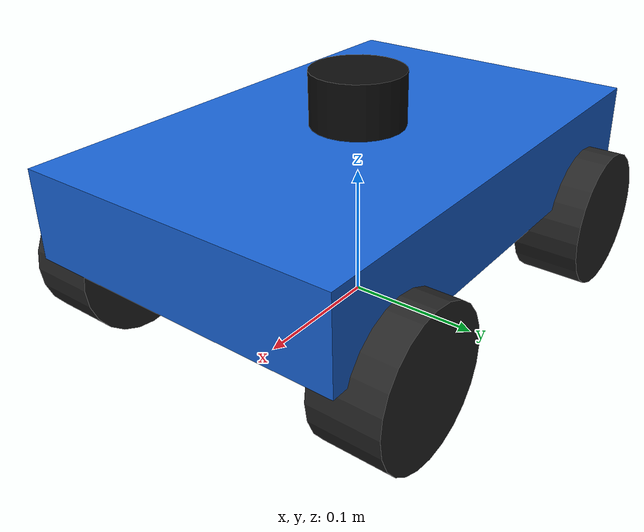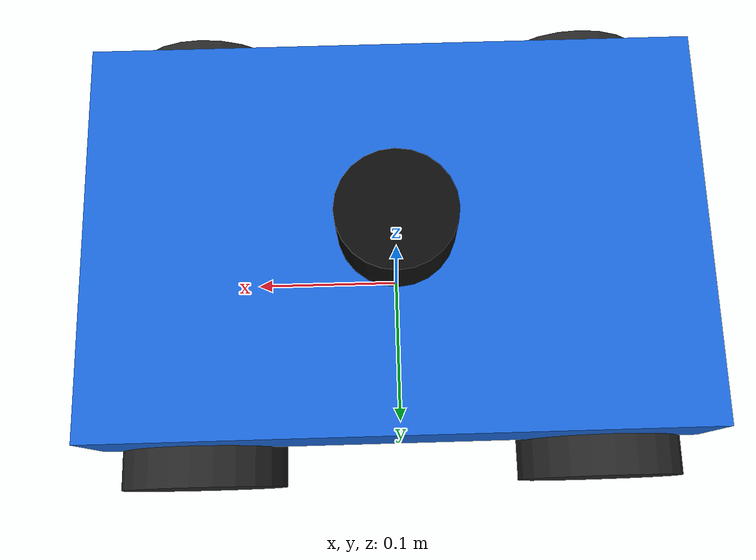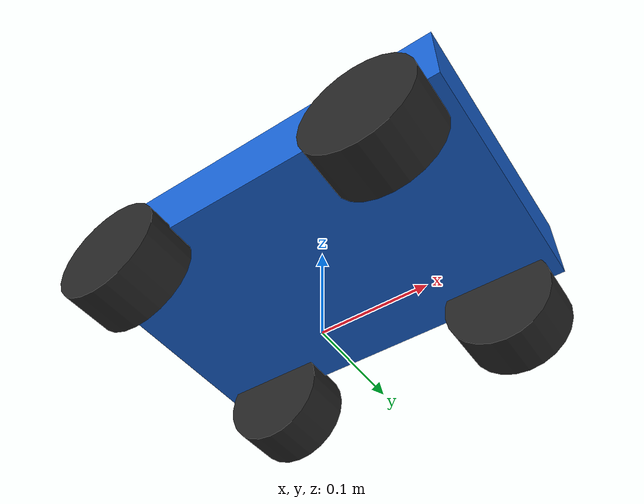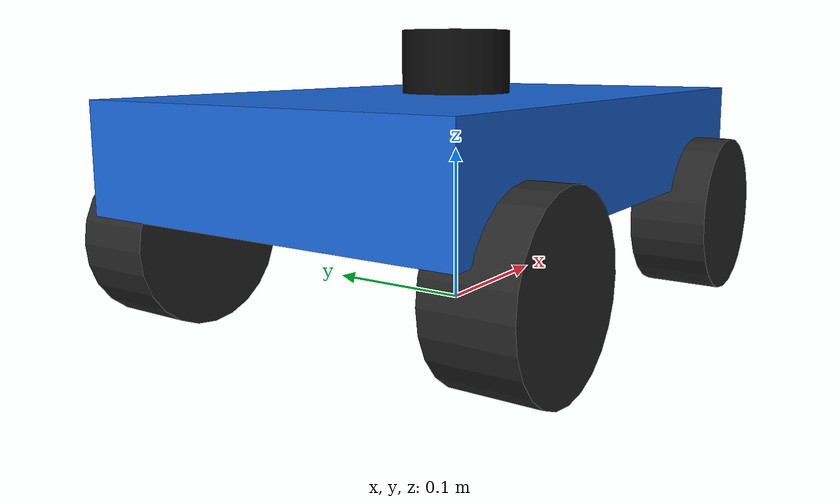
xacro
<?xml version="1.0"?>
<robot xmlns:xacro="http://www.ros.org/wiki/xacro" name="hotel_ackermann">

  <xacro:include filename="properties.xacro"/>
  <xacro:include filename="robot_core.xacro"/>
  <xacro:include filename="lidar.xacro"/>
  <xacro:include filename="imu.xacro"/>
  <xacro:include filename="ros2_control.xacro"/>

</robot>

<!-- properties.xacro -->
<robot xmlns:xacro="http://www.ros.org/wiki/xacro">

  <!-- ============================================================
       DIMENSIONES FÍSICAS (todas en metros y kg)
       ============================================================ -->

  <!-- Chasis (body, sin ruedas ni bumpers) -->
  <xacro:property name="chassis_length" value="0.370"/>   <!-- ~410 mm sin bumpers -->
  <xacro:property name="chassis_width"  value="0.240"/>   <!-- ~288 mm sin sobresaltos -->
  <xacro:property name="chassis_height" value="0.065"/>   <!-- altura del cuerpo -->
  <xacro:property name="chassis_mass"   value="4.0"/>     <!-- 5 kg total - 4 ruedas -->

  <!-- Geometría Ackermann -->
  <xacro:property name="wheelbase"       value="0.251"/>  <!-- distancia entre ejes -->
  <xacro:property name="wheel_track"     value="0.238"/>  <!-- ancho de vía -->
  <xacro:property name="front_axle_x"   value="${wheelbase / 2.0}"/>
  <xacro:property name="rear_axle_x"    value="${-wheelbase / 2.0}"/>
  <xacro:property name="wheel_y_offset" value="${wheel_track / 2.0}"/>

  <!-- Ruedas -->
  <xacro:property name="wheel_radius"   value="0.052"/>   <!-- radio -->
  <xacro:property name="wheel_width"    value="0.050"/>   <!-- ancho del cilindro -->
  <xacro:property name="wheel_mass"     value="0.25"/>    <!-- masa por rueda -->

  <!-- Altura del centro de chasis sobre el suelo (aprox CoG) -->
  <xacro:property name="chassis_z_offset" value="${wheel_radius + 0.020 + chassis_height / 2.0}"/>
  <!-- = 0.052 + 0.020 (holgura suspensión) + 0.0325 = ~0.105 m -->

  <!-- Límites de dirección (40° = 0.6981 rad) -->
  <xacro:property name="max_steer_angle"     value="0.6981"/>
  <xacro:property name="steer_effort"        value="10.0"/>   <!-- Nm -->
  <xacro:property name="steer_vel_limit"     value="2.0"/>    <!-- rad/s -->

  <!-- Límites de velocidad de ruedas -->
  <!-- v_max / r = 4.0 / 0.052 ≈ 77 rad/s → ponemos margen a 100 -->
  <xacro:property name="wheel_vel_limit"     value="100.0"/>  <!-- rad/s -->

  <!-- ============================================================
       MACROS DE INERCIA
       ============================================================ -->

  <!-- Caja sólida homogénea -->
  <xacro:macro name="box_inertia" params="m l w h">
    <inertial>
      <mass value="${m}"/>
      <inertia
        ixx="${m / 12.0 * (w*w + h*h)}"  ixy="0.0" ixz="0.0"
        iyy="${m / 12.0 * (l*l + h*h)}"  iyz="0.0"
        izz="${m / 12.0 * (l*l + w*w)}"/>
    </inertial>
  </xacro:macro>

  <!-- Cilindro sólido (eje = Z en definición, se rota en el joint) -->
  <xacro:macro name="cylinder_inertia" params="m r h">
    <inertial>
      <mass value="${m}"/>
      <inertia
        ixx="${m / 12.0 * (3.0*r*r + h*h)}"  ixy="0.0" ixz="0.0"
        iyy="${m / 12.0 * (3.0*r*r + h*h)}"  iyz="0.0"
        izz="${m / 2.0  * r*r}"/>
    </inertial>
  </xacro:macro>

  <!-- Esfera sólida (para links virtuales mínimos) -->
  <xacro:macro name="sphere_inertia" params="m r">
    <inertial>
      <mass value="${m}"/>
      <inertia
        ixx="${2.0/5.0 * m * r*r}" ixy="0.0" ixz="0.0"
        iyy="${2.0/5.0 * m * r*r}" iyz="0.0"
        izz="${2.0/5.0 * m * r*r}"/>
    </inertial>
  </xacro:macro>

</robot>

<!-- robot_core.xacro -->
<robot xmlns:xacro="http://www.ros.org/wiki/xacro">

  <xacro:macro name="wheel_link" params="name">
    <link name="${name}">
      <visual>
        <origin xyz="0 0 0" rpy="${pi/2} 0 0"/>
        <geometry>
          <cylinder radius="${wheel_radius}" length="${wheel_width}"/>
        </geometry>
        <material name="dark_gray">
          <color rgba="0.15 0.15 0.15 1.0"/>
        </material>
      </visual>
      <collision>
        <origin xyz="0 0 0" rpy="${pi/2} 0 0"/>
        <geometry>
          <cylinder radius="${wheel_radius}" length="${wheel_width}"/>
        </geometry>
      </collision>
      <!-- Inercia del cilindro (eje de giro = Y → h = wheel_width, r = wheel_radius) -->
      <inertial>
        <mass value="${wheel_mass}"/>
        <inertia
          ixx="${wheel_mass / 12.0 * (3.0*wheel_radius*wheel_radius + wheel_width*wheel_width)}"
          ixy="0.0" ixz="0.0"
          iyy="${wheel_mass / 2.0 * wheel_radius*wheel_radius}"
          iyz="0.0"
          izz="${wheel_mass / 12.0 * (3.0*wheel_radius*wheel_radius + wheel_width*wheel_width)}"/>
      </inertial>
    </link>

    <!-- Fricción en Gazebo Harmonic (SDF 1.10): anidado correcto -->
    <gazebo reference="${name}">
      <collision>
        <surface>
          <friction>
            <ode>
              <mu>0.9</mu>
              <mu2>0.9</mu2>
            </ode>
          </friction>
          <contact>
            <ode>
              <kp>1000000.0</kp>
              <kd>1.0</kd>
              <min_depth>0.001</min_depth>
              <max_vel>0.1</max_vel>
            </ode>
          </contact>
        </surface>
      </collision>
      <material>Gazebo/Black</material>
    </gazebo>
  </xacro:macro>

  <!-- ============================================================
       BASE LINK  (frame de referencia del robot, al nivel del suelo)
       ============================================================ -->
  <link name="base_link"/>

  <!-- ============================================================
       CHASIS
       ============================================================ -->
  <joint name="chassis_joint" type="fixed">
    <parent link="base_link"/>
    <child  link="chassis_link"/>
    <origin xyz="0 0 ${chassis_z_offset}" rpy="0 0 0"/>
  </joint>

  <link name="chassis_link">
    <visual>
      <origin xyz="0 0 0" rpy="0 0 0"/>
      <geometry>
        <box size="${chassis_length} ${chassis_width} ${chassis_height}"/>
      </geometry>
      <material name="body_blue">
        <color rgba="0.10 0.40 0.85 1.0"/>
      </material>
    </visual>
    <collision>
      <origin xyz="0 0 0" rpy="0 0 0"/>
      <geometry>
        <box size="${chassis_length} ${chassis_width} ${chassis_height}"/>
      </geometry>
    </collision>
    <xacro:box_inertia
      m="${chassis_mass}"
      l="${chassis_length}"
      w="${chassis_width}"
      h="${chassis_height}"/>
  </link>

  <gazebo reference="chassis_link">
    <material>Gazebo/Blue</material>
  </gazebo>

  <!-- Steering hub FL (link virtual de masa mínima) -->
  <joint name="front_left_steering_joint" type="revolute">
    <parent link="base_link"/>
    <child  link="front_left_steering_link"/>
    <origin xyz="${front_axle_x} ${wheel_y_offset} ${wheel_radius}" rpy="0 0 0"/>
    <axis xyz="0 0 1"/>
    <limit lower="${-max_steer_angle}" upper="${max_steer_angle}"
           effort="${steer_effort}" velocity="${steer_vel_limit}"/>
    <dynamics damping="0.05" friction="0.05"/>
  </joint>

  <link name="front_left_steering_link">
    <!-- Link virtual: masa/inercia mínimas para no romper el solver -->
    <inertial>
      <mass value="0.05"/>
      <inertia ixx="1e-5" ixy="0" ixz="0"
               iyy="1e-5" iyz="0"
               izz="1e-5"/>
    </inertial>
  </link>

  <!-- Rueda FL (hijo del hub de dirección) -->
  <joint name="front_left_wheel_joint" type="continuous">
    <parent link="front_left_steering_link"/>
    <child  link="front_left_wheel_link"/>
    <origin xyz="0 0 0" rpy="0 0 0"/>
    <axis xyz="0 1 0"/>
    <limit effort="5.0" velocity="${wheel_vel_limit}"/>
    <dynamics damping="0.02" friction="0.02"/>
  </joint>

  <xacro:wheel_link name="front_left_wheel_link"/>

  <!-- ============================================================
       EJE DELANTERO DERECHO
       ============================================================ -->

  <joint name="front_right_steering_joint" type="revolute">
    <parent link="base_link"/>
    <child  link="front_right_steering_link"/>
    <origin xyz="${front_axle_x} ${-wheel_y_offset} ${wheel_radius}" rpy="0 0 0"/>
    <axis xyz="0 0 1"/>
    <limit lower="${-max_steer_angle}" upper="${max_steer_angle}"
           effort="${steer_effort}" velocity="${steer_vel_limit}"/>
    <dynamics damping="0.05" friction="0.05"/>
  </joint>

  <link name="front_right_steering_link">
    <inertial>
      <mass value="0.05"/>
      <inertia ixx="1e-5" ixy="0" ixz="0"
               iyy="1e-5" iyz="0"
               izz="1e-5"/>
    </inertial>
  </link>

  <joint name="front_right_wheel_joint" type="continuous">
    <parent link="front_right_steering_link"/>
    <child  link="front_right_wheel_link"/>
    <origin xyz="0 0 0" rpy="0 0 0"/>
    <axis xyz="0 1 0"/>
    <limit effort="5.0" velocity="${wheel_vel_limit}"/>
    <dynamics damping="0.02" friction="0.02"/>
  </joint>

  <xacro:wheel_link name="front_right_wheel_link"/>

  <!-- ============================================================
       EJE TRASERO IZQUIERDO  (tracción principal + odometría)
       ============================================================ -->

  <joint name="rear_left_wheel_joint" type="continuous">
    <parent link="base_link"/>
    <child  link="rear_left_wheel_link"/>
    <origin xyz="${rear_axle_x} ${wheel_y_offset} ${wheel_radius}" rpy="0 0 0"/>
    <axis xyz="0 1 0"/>
    <limit effort="5.0" velocity="${wheel_vel_limit}"/>
    <dynamics damping="0.02" friction="0.02"/>
  </joint>

  <xacro:wheel_link name="rear_left_wheel_link"/>

  <!-- ============================================================
       EJE TRASERO DERECHO
       ============================================================ -->

  <joint name="rear_right_wheel_joint" type="continuous">
    <parent link="base_link"/>
    <child  link="rear_right_wheel_link"/>
    <origin xyz="${rear_axle_x} ${-wheel_y_offset} ${wheel_radius}" rpy="0 0 0"/>
    <axis xyz="0 1 0"/>
    <limit effort="5.0" velocity="${wheel_vel_limit}"/>
    <dynamics damping="0.02" friction="0.02"/>
  </joint>

  <xacro:wheel_link name="rear_right_wheel_link"/>

</robot>

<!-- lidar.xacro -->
<robot xmlns:xacro="http://www.ros.org/wiki/xacro">

  <!--
    LiDAR montado en el centro del base_link (x=0, y=0)
    sobre la parte superior del chasis, orientado igual que el frente del carro.
    10 Hz, 360° horizontal.
  -->

  <!-- Altura de montaje: top del chasis + radio del lidar (cápsula) -->
  <xacro:property name="lidar_z"
    value="${chassis_z_offset + chassis_height / 2.0 + 0.020}"/>

  <joint name="lidar_joint" type="fixed">
    <parent link="base_link"/>
    <child  link="lidar_link"/>
    <!-- x=0, y=0 → centro exacto; orientación igual al frente del carro (yaw=0) -->
    <origin xyz="0.0 0.0 ${lidar_z}" rpy="0 0 0"/>
  </joint>

  <link name="lidar_link">
    <visual>
      <origin xyz="0 0 0" rpy="0 0 0"/>
      <geometry>
        <cylinder radius="0.035" length="0.040"/>
      </geometry>
      <material name="lidar_black">
        <color rgba="0.05 0.05 0.05 1.0"/>
      </material>
    </visual>
    <collision>
      <origin xyz="0 0 0" rpy="0 0 0"/>
      <geometry>
        <cylinder radius="0.035" length="0.040"/>
      </geometry>
    </collision>
    <inertial>
      <mass value="0.10"/>
      <inertia ixx="3e-5" ixy="0" ixz="0"
               iyy="3e-5" iyz="0"
               izz="2e-5"/>
    </inertial>
  </link>

  <gazebo reference="lidar_link">
    <sensor name="lidar_sensor" type="gpu_lidar">
      <pose>0 0 0 0 0 0</pose>
      <topic>scan</topic>
      <update_rate>10</update_rate>
      <gz_frame_id>lidar_link</gz_frame_id>
      <lidar>
        <scan>
          <horizontal>
            <samples>720</samples>     <!-- 0.5° de resolución angular -->
            <resolution>1</resolution>
            <min_angle>-3.14159265</min_angle>
            <max_angle>3.14159265</max_angle>
          </horizontal>
          <vertical>
            <samples>1</samples>
            <min_angle>0</min_angle>
            <max_angle>0</max_angle>
          </vertical>
        </scan>
        <range>
          <min>0.12</min>
          <max>10.0</max>
          <resolution>0.005</resolution>
        </range>
        <noise>
          <type>gaussian</type>
          <mean>0.0</mean>
          <stddev>0.005</stddev>
        </noise>
      </lidar>
      <always_on>true</always_on>
      <visualize>false</visualize>
    </sensor>
  </gazebo>

</robot>

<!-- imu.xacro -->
<robot xmlns:xacro="http://www.ros.org/wiki/xacro">

  <!--
    IMU montada en el centro del base_link (coincide con el centro del carro).
    100 Hz. Frame: imu_link.
  -->

  <joint name="imu_joint" type="fixed">
    <parent link="base_link"/>
    <child  link="imu_link"/>
    <!-- Centro exacto del carro, a la misma altura que el CoG del chasis -->
    <origin xyz="0.0 0.0 ${chassis_z_offset}" rpy="0 0 0"/>
  </joint>

  <link name="imu_link">
    <!-- Link virtual: no visual, masa mínima -->
    <inertial>
      <mass value="0.01"/>
      <inertia ixx="1e-6" ixy="0" ixz="0"
               iyy="1e-6" iyz="0"
               izz="1e-6"/>
    </inertial>
  </link>

  <gazebo reference="imu_link">
    <sensor name="imu_sensor" type="imu">
      <always_on>true</always_on>
      <update_rate>100</update_rate>
      <topic>imu</topic>
      <gz_frame_id>imu_link</gz_frame_id>
      <imu>
        <angular_velocity>
          <x>
            <noise type="gaussian">
              <mean>0.0</mean>
              <stddev>0.009</stddev>
              <bias_mean>0.0</bias_mean>
              <bias_stddev>0.001</bias_stddev>
            </noise>
          </x>
          <y>
            <noise type="gaussian">
              <mean>0.0</mean>
              <stddev>0.009</stddev>
              <bias_mean>0.0</bias_mean>
              <bias_stddev>0.001</bias_stddev>
            </noise>
          </y>
          <z>
            <noise type="gaussian">
              <mean>0.0</mean>
              <stddev>0.009</stddev>
              <bias_mean>0.0</bias_mean>
              <bias_stddev>0.001</bias_stddev>
            </noise>
          </z>
        </angular_velocity>
        <linear_acceleration>
          <x>
            <noise type="gaussian">
              <mean>0.0</mean>
              <stddev>0.021</stddev>
              <bias_mean>0.0</bias_mean>
              <bias_stddev>0.002</bias_stddev>
            </noise>
          </x>
          <y>
            <noise type="gaussian">
              <mean>0.0</mean>
              <stddev>0.021</stddev>
              <bias_mean>0.0</bias_mean>
              <bias_stddev>0.002</bias_stddev>
            </noise>
          </y>
          <z>
            <noise type="gaussian">
              <mean>0.0</mean>
              <stddev>0.021</stddev>
              <bias_mean>0.0</bias_mean>
              <bias_stddev>0.002</bias_stddev>
            </noise>
          </z>
        </linear_acceleration>
      </imu>
    </sensor>
  </gazebo>

</robot>
